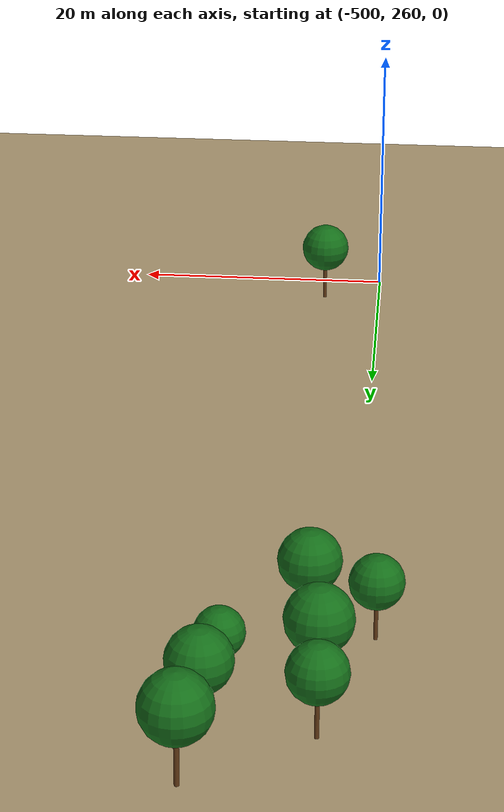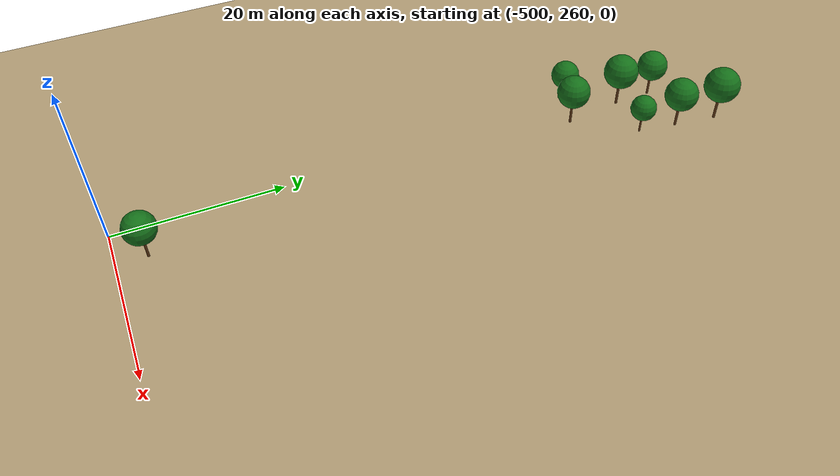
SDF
<sdf version="1.9">
 <world name="crossroad_world">
  <model name="ground_plane">
   <static>true</static>
   <pose>0 0 -0.05 0 0 0</pose>
   <link name="link">
    <collision name="collision">
     <geometry><plane><normal>0 0 1</normal><size>10000 10000</size></plane></geometry>
    </collision>
    <visual name="visual">
     <geometry><plane><normal>0 0 1</normal><size>15000 15000</size></plane></geometry>
     <material><ambient>0.68 0.60 0.45 1</ambient><diffuse>0.68 0.60 0.45 1</diffuse></material>
    </visual>
   </link>
  </model>
  <model name="tree_334">
   <static>true</static>
   <pose>-501.411 317.207 0 0 0 0</pose>
   <link name="link">
    <visual name="trunk">
     <pose>0 0 1.462 0 0 0</pose>
     <geometry><cylinder><radius>0.128</radius><length>2.924</length></cylinder></geometry>
     <material><ambient>0.38 0.22 0.08 1</ambient><diffuse>0.38 0.22 0.08 1</diffuse></material>
    </visual>
    <visual name="canopy">
     <pose>0 0 4.053 0 0 0</pose>
     <geometry><sphere><radius>1.736</radius></sphere></geometry>
     <material><ambient>0.08 0.44 0.10 1</ambient><diffuse>0.08 0.44 0.10 1</diffuse></material>
    </visual>
    <collision name="col">
     <pose>0 0 1.462 0 0 0</pose>
     <geometry><cylinder><radius>0.128</radius><length>2.924</length></cylinder></geometry>
    </collision>
   </link>
  </model>
  <model name="tree_335">
   <static>true</static>
   <pose>-497.273 316.073 0 0 0 0</pose>
   <link name="link">
    <visual name="trunk">
     <pose>0 0 1.700 0 0 0</pose>
     <geometry><cylinder><radius>0.149</radius><length>3.400</length></cylinder></geometry>
     <material><ambient>0.38 0.22 0.08 1</ambient><diffuse>0.38 0.22 0.08 1</diffuse></material>
    </visual>
    <visual name="canopy">
     <pose>0 0 4.712 0 0 0</pose>
     <geometry><sphere><radius>2.019</radius></sphere></geometry>
     <material><ambient>0.08 0.44 0.10 1</ambient><diffuse>0.08 0.44 0.10 1</diffuse></material>
    </visual>
    <collision name="col">
     <pose>0 0 1.700 0 0 0</pose>
     <geometry><cylinder><radius>0.149</radius><length>3.400</length></cylinder></geometry>
    </collision>
   </link>
  </model>
  <model name="tree_336">
   <static>true</static>
   <pose>-498.226 323.233 0 0 0 0</pose>
   <link name="link">
    <visual name="trunk">
     <pose>0 0 1.797 0 0 0</pose>
     <geometry><cylinder><radius>0.157</radius><length>3.594</length></cylinder></geometry>
     <material><ambient>0.38 0.22 0.08 1</ambient><diffuse>0.38 0.22 0.08 1</diffuse></material>
    </visual>
    <visual name="canopy">
     <pose>0 0 4.981 0 0 0</pose>
     <geometry><sphere><radius>2.134</radius></sphere></geometry>
     <material><ambient>0.08 0.44 0.10 1</ambient><diffuse>0.08 0.44 0.10 1</diffuse></material>
    </visual>
    <collision name="col">
     <pose>0 0 1.797 0 0 0</pose>
     <geometry><cylinder><radius>0.157</radius><length>3.594</length></cylinder></geometry>
    </collision>
   </link>
  </model>
  <model name="tree_337">
   <static>true</static>
   <pose>-498.409 327.961 0 0 0 0</pose>
   <link name="link">
    <visual name="trunk">
     <pose>0 0 1.577 0 0 0</pose>
     <geometry><cylinder><radius>0.138</radius><length>3.154</length></cylinder></geometry>
     <material><ambient>0.38 0.22 0.08 1</ambient><diffuse>0.38 0.22 0.08 1</diffuse></material>
    </visual>
    <visual name="canopy">
     <pose>0 0 4.372 0 0 0</pose>
     <geometry><sphere><radius>1.873</radius></sphere></geometry>
     <material><ambient>0.08 0.44 0.10 1</ambient><diffuse>0.08 0.44 0.10 1</diffuse></material>
    </visual>
    <collision name="col">
     <pose>0 0 1.577 0 0 0</pose>
     <geometry><cylinder><radius>0.138</radius><length>3.154</length></cylinder></geometry>
    </collision>
   </link>
  </model>
  <model name="tree_338">
   <static>true</static>
   <pose>-492.384 323.094 0 0 0 0</pose>
   <link name="link">
    <visual name="trunk">
     <pose>0 0 1.325 0 0 0</pose>
     <geometry><cylinder><radius>0.116</radius><length>2.650</length></cylinder></geometry>
     <material><ambient>0.38 0.22 0.08 1</ambient><diffuse>0.38 0.22 0.08 1</diffuse></material>
    </visual>
    <visual name="canopy">
     <pose>0 0 3.673 0 0 0</pose>
     <geometry><sphere><radius>1.574</radius></sphere></geometry>
     <material><ambient>0.08 0.44 0.10 1</ambient><diffuse>0.08 0.44 0.10 1</diffuse></material>
    </visual>
    <collision name="col">
     <pose>0 0 1.325 0 0 0</pose>
     <geometry><cylinder><radius>0.116</radius><length>2.650</length></cylinder></geometry>
    </collision>
   </link>
  </model>
  <model name="tree_339">
   <static>true</static>
   <pose>-491.713 327.839 0 0 0 0</pose>
   <link name="link">
    <visual name="trunk">
     <pose>0 0 1.714 0 0 0</pose>
     <geometry><cylinder><radius>0.150</radius><length>3.427</length></cylinder></geometry>
     <material><ambient>0.38 0.22 0.08 1</ambient><diffuse>0.38 0.22 0.08 1</diffuse></material>
    </visual>
    <visual name="canopy">
     <pose>0 0 4.750 0 0 0</pose>
     <geometry><sphere><radius>2.035</radius></sphere></geometry>
     <material><ambient>0.08 0.44 0.10 1</ambient><diffuse>0.08 0.44 0.10 1</diffuse></material>
    </visual>
    <collision name="col">
     <pose>0 0 1.714 0 0 0</pose>
     <geometry><cylinder><radius>0.150</radius><length>3.427</length></cylinder></geometry>
    </collision>
   </link>
  </model>
  <model name="tree_340">
   <static>true</static>
   <pose>-491.013 333.104 0 0 0 0</pose>
   <link name="link">
    <visual name="trunk">
     <pose>0 0 1.837 0 0 0</pose>
     <geometry><cylinder><radius>0.161</radius><length>3.675</length></cylinder></geometry>
     <material><ambient>0.38 0.22 0.08 1</ambient><diffuse>0.38 0.22 0.08 1</diffuse></material>
    </visual>
    <visual name="canopy">
     <pose>0 0 5.093 0 0 0</pose>
     <geometry><sphere><radius>2.182</radius></sphere></geometry>
     <material><ambient>0.08 0.44 0.10 1</ambient><diffuse>0.08 0.44 0.10 1</diffuse></material>
    </visual>
    <collision name="col">
     <pose>0 0 1.837 0 0 0</pose>
     <geometry><cylinder><radius>0.161</radius><length>3.675</length></cylinder></geometry>
    </collision>
   </link>
  </model>
  <model name="tree_343">
   <static>true</static>
   <pose>-495.481 263.588 0 0 0 0</pose>
   <link name="link">
    <visual name="trunk">
     <pose>0 0 1.614 0 0 0</pose>
     <geometry><cylinder><radius>0.141</radius><length>3.228</length></cylinder></geometry>
     <material><ambient>0.38 0.22 0.08 1</ambient><diffuse>0.38 0.22 0.08 1</diffuse></material>
    </visual>
    <visual name="canopy">
     <pose>0 0 4.474 0 0 0</pose>
     <geometry><sphere><radius>1.917</radius></sphere></geometry>
     <material><ambient>0.08 0.44 0.10 1</ambient><diffuse>0.08 0.44 0.10 1</diffuse></material>
    </visual>
    <collision name="col">
     <pose>0 0 1.614 0 0 0</pose>
     <geometry><cylinder><radius>0.141</radius><length>3.228</length></cylinder></geometry>
    </collision>
   </link>
  </model>
 </world>
</sdf>
